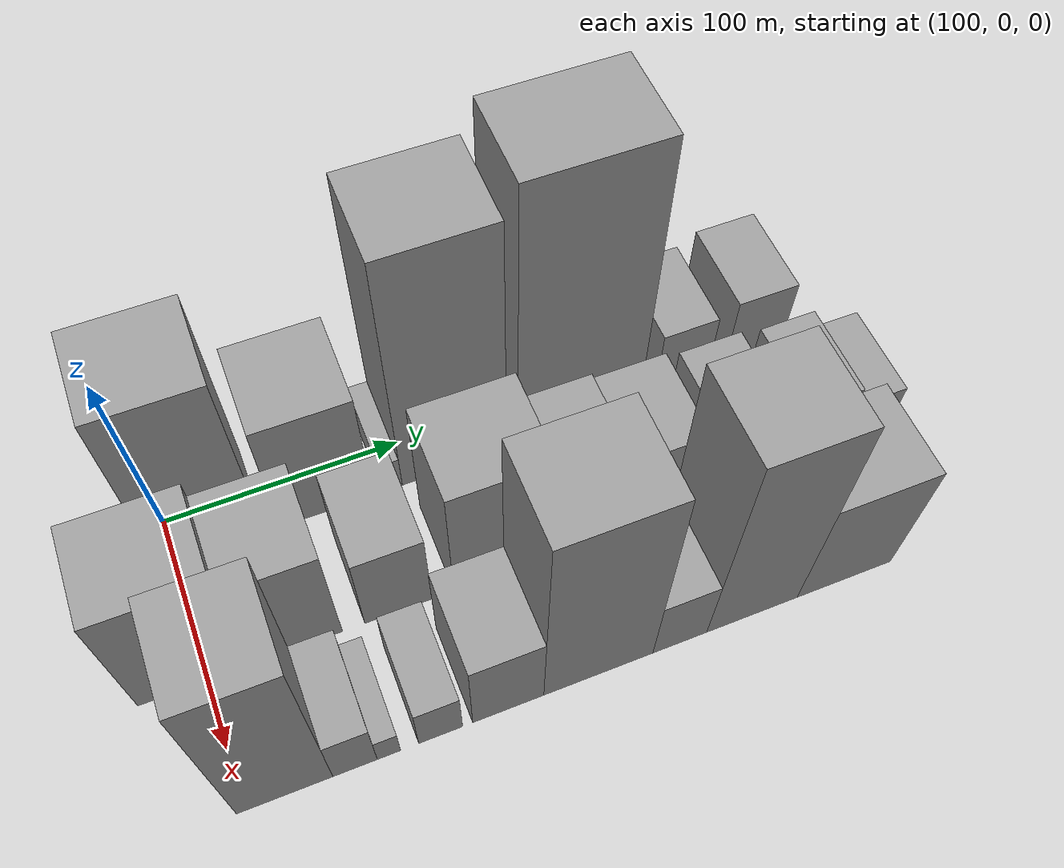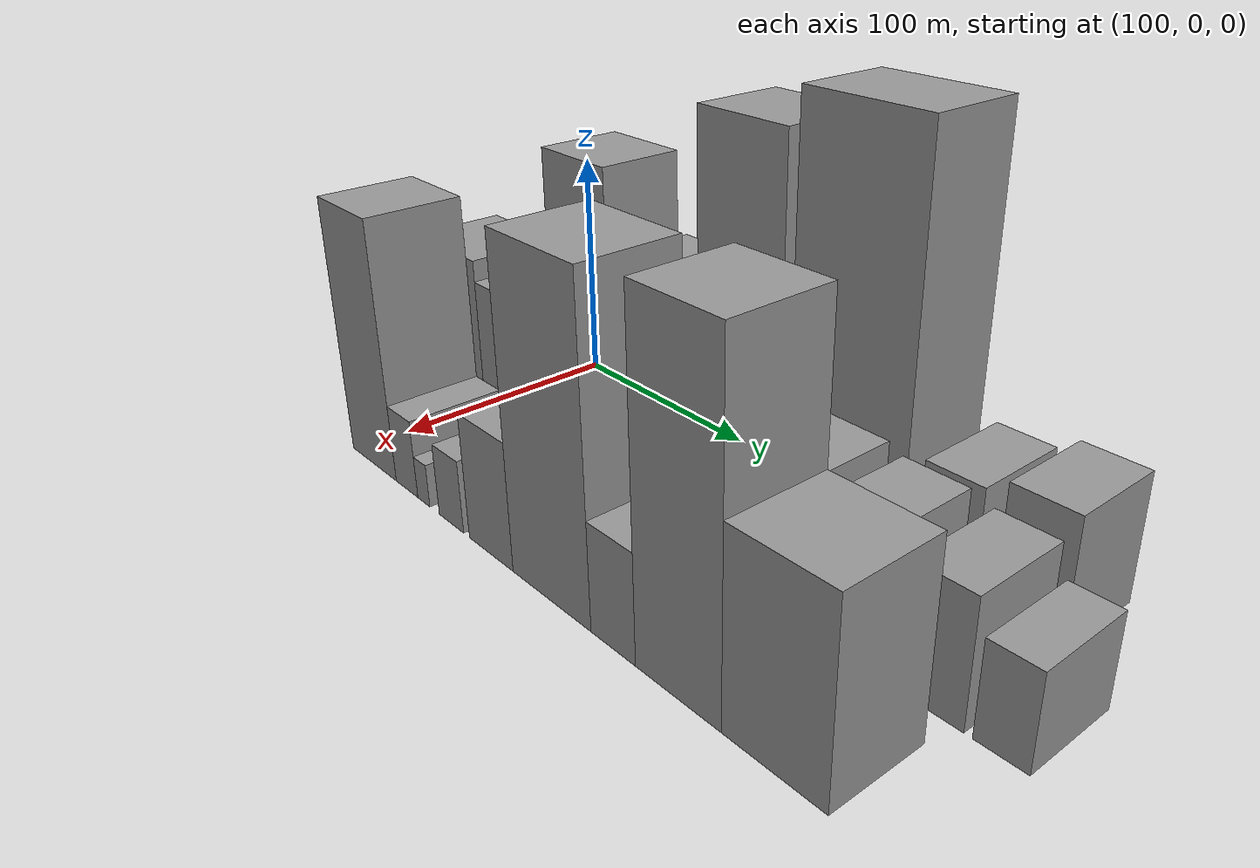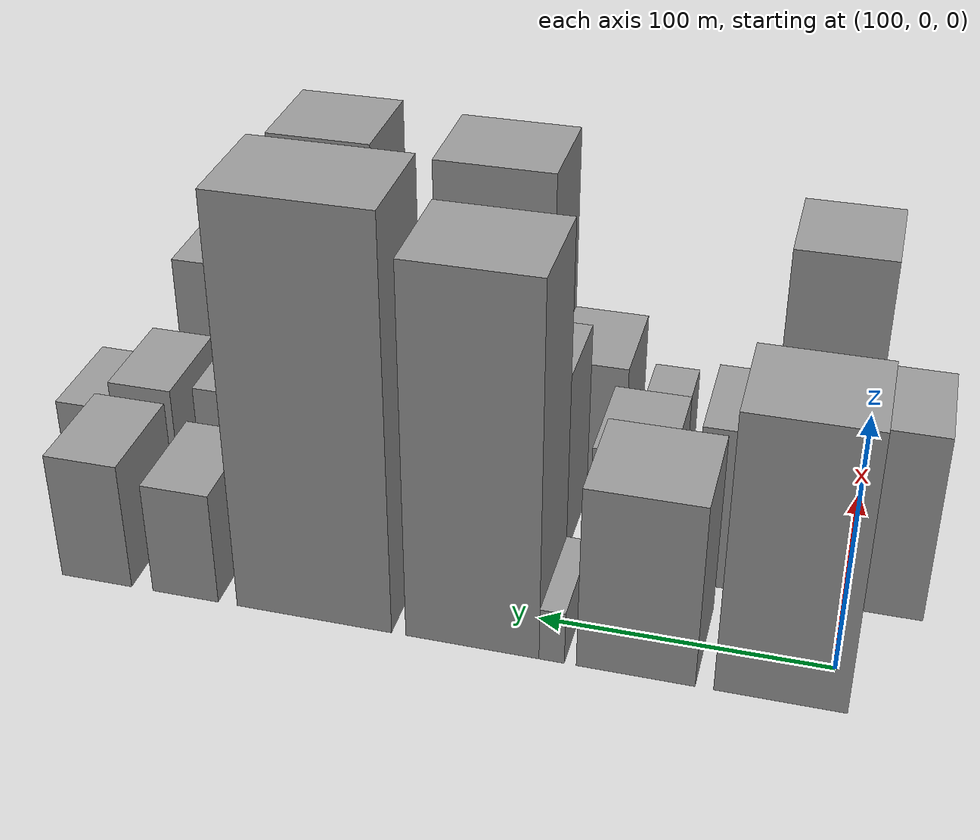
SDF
<sdf version="1.6">
 <world name="default">
  <model name="building_19">
   <static>1</static>
   <pose>100.0000 15.9065 0 0.000000 0.000000 0.000000</pose>
   <link name="link">
    <pose>0 0 54.00 0 0 0</pose>
    <collision name="collision"><geometry><box><size>40.0000 42.9172 108.0000</size></box></geometry></collision>
    <visual name="visual">
     <cast_shadows>0</cast_shadows>
     <geometry><box><size>40.0000 42.9172 108.0000</size></box></geometry>
     <material>
      <script>
       <uri>model://grey_wall/materials/scripts</uri>
       <uri>model://grey_wall/materials/textures</uri>
       <name>vrc/grey_wall</name>
      </script>
     </material>
    </visual>
   </link>
  </model>
  <model name="building_20">
   <static>1</static>
   <pose>100.0000 63.1172 0 0.000000 0.000000 0.000000</pose>
   <link name="link">
    <pose>0 0 36.00 0 0 0</pose>
    <collision name="collision"><geometry><box><size>40.0000 39.5042 72.0000</size></box></geometry></collision>
    <visual name="visual">
     <cast_shadows>0</cast_shadows>
     <geometry><box><size>40.0000 39.5042 72.0000</size></box></geometry>
     <material>
      <script>
       <uri>model://grey_wall/materials/scripts</uri>
       <uri>model://grey_wall/materials/textures</uri>
       <name>vrc/grey_wall</name>
      </script>
     </material>
    </visual>
   </link>
  </model>
  <model name="building_21">
   <static>1</static>
   <pose>100.0000 91.1646 0 0.000000 0.000000 0.000000</pose>
   <link name="link">
    <pose>0 0 10.50 0 0 0</pose>
    <collision name="collision"><geometry><box><size>40.0000 8.5904 21.0000</size></box></geometry></collision>
    <visual name="visual">
     <cast_shadows>0</cast_shadows>
     <geometry><box><size>40.0000 8.5904 21.0000</size></box></geometry>
     <material>
      <script>
       <uri>model://grey_wall/materials/scripts</uri>
       <uri>model://grey_wall/materials/textures</uri>
       <name>vrc/grey_wall</name>
      </script>
     </material>
    </visual>
   </link>
  </model>
  <model name="building_22">
   <static>1</static>
   <pose>100.0000 118.4998 0 0.000000 0.000000 0.000000</pose>
   <link name="link">
    <pose>0 0 72.00 0 0 0</pose>
    <collision name="collision"><geometry><box><size>40.0000 46.0801 144.0000</size></box></geometry></collision>
    <visual name="visual">
     <cast_shadows>0</cast_shadows>
     <geometry><box><size>40.0000 46.0801 144.0000</size></box></geometry>
     <material>
      <script>
       <uri>model://grey_wall/materials/scripts</uri>
       <uri>model://grey_wall/materials/textures</uri>
       <name>vrc/grey_wall</name>
      </script>
     </material>
    </visual>
   </link>
  </model>
  <model name="building_23">
   <static>1</static>
   <pose>100.0000 174.3780 0 0.000000 0.000000 0.000000</pose>
   <link name="link">
    <pose>0 0 79.50 0 0 0</pose>
    <collision name="collision"><geometry><box><size>40.0000 55.6762 159.0000</size></box></geometry></collision>
    <visual name="visual">
     <cast_shadows>0</cast_shadows>
     <geometry><box><size>40.0000 55.6762 159.0000</size></box></geometry>
     <material>
      <script>
       <uri>model://grey_wall/materials/scripts</uri>
       <uri>model://grey_wall/materials/textures</uri>
       <name>vrc/grey_wall</name>
      </script>
     </material>
    </visual>
   </link>
  </model>
  <model name="building_24">
   <static>1</static>
   <pose>100.0000 221.4024 0 0.000000 0.000000 0.000000</pose>
   <link name="link">
    <pose>0 0 22.50 0 0 0</pose>
    <collision name="collision"><geometry><box><size>40.0000 24.3726 45.0000</size></box></geometry></collision>
    <visual name="visual">
     <cast_shadows>0</cast_shadows>
     <geometry><box><size>40.0000 24.3726 45.0000</size></box></geometry>
     <material>
      <script>
       <uri>model://grey_wall/materials/scripts</uri>
       <uri>model://grey_wall/materials/textures</uri>
       <name>vrc/grey_wall</name>
      </script>
     </material>
    </visual>
   </link>
  </model>
  <model name="building_25">
   <static>1</static>
   <pose>100.0000 254.8437 0 0.000000 0.000000 0.000000</pose>
   <link name="link">
    <pose>0 0 25.50 0 0 0</pose>
    <collision name="collision"><geometry><box><size>40.0000 26.5101 51.0000</size></box></geometry></collision>
    <visual name="visual">
     <cast_shadows>0</cast_shadows>
     <geometry><box><size>40.0000 26.5101 51.0000</size></box></geometry>
     <material>
      <script>
       <uri>model://grey_wall/materials/scripts</uri>
       <uri>model://grey_wall/materials/textures</uri>
       <name>vrc/grey_wall</name>
      </script>
     </material>
    </visual>
   </link>
  </model>
  <model name="building_53">
   <static>1</static>
   <pose>152.0000 -4.4842 0 0.000000 0.000000 0.000000</pose>
   <link name="link">
    <pose>0 0 37.50 0 0 0</pose>
    <collision name="collision"><geometry><box><size>40.0000 44.1118 75.0000</size></box></geometry></collision>
    <visual name="visual">
     <cast_shadows>0</cast_shadows>
     <geometry><box><size>40.0000 44.1118 75.0000</size></box></geometry>
     <material>
      <script>
       <uri>model://grey_wall/materials/scripts</uri>
       <uri>model://grey_wall/materials/textures</uri>
       <name>vrc/grey_wall</name>
      </script>
     </material>
    </visual>
   </link>
  </model>
  <model name="building_54">
   <static>1</static>
   <pose>152.0000 35.4075 0 0.000000 0.000000 0.000000</pose>
   <link name="link">
    <pose>0 0 33.00 0 0 0</pose>
    <collision name="collision"><geometry><box><size>40.0000 35.6717 66.0000</size></box></geometry></collision>
    <visual name="visual">
     <cast_shadows>0</cast_shadows>
     <geometry><box><size>40.0000 35.6717 66.0000</size></box></geometry>
     <material>
      <script>
       <uri>model://grey_wall/materials/scripts</uri>
       <uri>model://grey_wall/materials/textures</uri>
       <name>vrc/grey_wall</name>
      </script>
     </material>
    </visual>
   </link>
  </model>
  <model name="building_55">
   <static>1</static>
   <pose>152.0000 76.0595 0 0.000000 0.000000 0.000000</pose>
   <link name="link">
    <pose>0 0 25.50 0 0 0</pose>
    <collision name="collision"><geometry><box><size>40.0000 27.6321 51.0000</size></box></geometry></collision>
    <visual name="visual">
     <cast_shadows>0</cast_shadows>
     <geometry><box><size>40.0000 27.6321 51.0000</size></box></geometry>
     <material>
      <script>
       <uri>model://grey_wall/materials/scripts</uri>
       <uri>model://grey_wall/materials/textures</uri>
       <name>vrc/grey_wall</name>
      </script>
     </material>
    </visual>
   </link>
  </model>
  <model name="building_56">
   <static>1</static>
   <pose>152.0000 119.8671 0 0.000000 0.000000 0.000000</pose>
   <link name="link">
    <pose>0 0 37.50 0 0 0</pose>
    <collision name="collision"><geometry><box><size>40.0000 41.9832 75.0000</size></box></geometry></collision>
    <visual name="visual">
     <cast_shadows>0</cast_shadows>
     <geometry><box><size>40.0000 41.9832 75.0000</size></box></geometry>
     <material>
      <script>
       <uri>model://grey_wall/materials/scripts</uri>
       <uri>model://grey_wall/materials/textures</uri>
       <name>vrc/grey_wall</name>
      </script>
     </material>
    </visual>
   </link>
  </model>
  <model name="building_57">
   <static>1</static>
   <pose>152.0000 156.3310 0 0.000000 0.000000 0.000000</pose>
   <link name="link">
    <pose>0 0 28.50 0 0 0</pose>
    <collision name="collision"><geometry><box><size>40.0000 30.9444 57.0000</size></box></geometry></collision>
    <visual name="visual">
     <cast_shadows>0</cast_shadows>
     <geometry><box><size>40.0000 30.9444 57.0000</size></box></geometry>
     <material>
      <script>
       <uri>model://grey_wall/materials/scripts</uri>
       <uri>model://grey_wall/materials/textures</uri>
       <name>vrc/grey_wall</name>
      </script>
     </material>
    </visual>
   </link>
  </model>
  <model name="building_58">
   <static>1</static>
   <pose>152.0000 187.4528 0 0.000000 0.000000 0.000000</pose>
   <link name="link">
    <pose>0 0 27.00 0 0 0</pose>
    <collision name="collision"><geometry><box><size>40.0000 31.2992 54.0000</size></box></geometry></collision>
    <visual name="visual">
     <cast_shadows>0</cast_shadows>
     <geometry><box><size>40.0000 31.2992 54.0000</size></box></geometry>
     <material>
      <script>
       <uri>model://grey_wall/materials/scripts</uri>
       <uri>model://grey_wall/materials/textures</uri>
       <name>vrc/grey_wall</name>
      </script>
     </material>
    </visual>
   </link>
  </model>
  <model name="building_59">
   <static>1</static>
   <pose>152.0000 222.5751 0 0.000000 0.000000 0.000000</pose>
   <link name="link">
    <pose>0 0 25.50 0 0 0</pose>
    <collision name="collision"><geometry><box><size>40.0000 26.9455 51.0000</size></box></geometry></collision>
    <visual name="visual">
     <cast_shadows>0</cast_shadows>
     <geometry><box><size>40.0000 26.9455 51.0000</size></box></geometry>
     <material>
      <script>
       <uri>model://grey_wall/materials/scripts</uri>
       <uri>model://grey_wall/materials/textures</uri>
       <name>vrc/grey_wall</name>
      </script>
     </material>
    </visual>
   </link>
  </model>
  <model name="building_60">
   <static>1</static>
   <pose>152.0000 257.1411 0 0.000000 0.000000 0.000000</pose>
   <link name="link">
    <pose>0 0 24.00 0 0 0</pose>
    <collision name="collision"><geometry><box><size>40.0000 24.1863 48.0000</size></box></geometry></collision>
    <visual name="visual">
     <cast_shadows>0</cast_shadows>
     <geometry><box><size>40.0000 24.1863 48.0000</size></box></geometry>
     <material>
      <script>
       <uri>model://grey_wall/materials/scripts</uri>
       <uri>model://grey_wall/materials/textures</uri>
       <name>vrc/grey_wall</name>
      </script>
     </material>
    </visual>
   </link>
  </model>
  <model name="building_61">
   <static>1</static>
   <pose>152.0000 281.9680 0 0.000000 0.000000 0.000000</pose>
   <link name="link">
    <pose>0 0 18.00 0 0 0</pose>
    <collision name="collision"><geometry><box><size>40.0000 19.4674 36.0000</size></box></geometry></collision>
    <visual name="visual">
     <cast_shadows>0</cast_shadows>
     <geometry><box><size>40.0000 19.4674 36.0000</size></box></geometry>
     <material>
      <script>
       <uri>model://grey_wall/materials/scripts</uri>
       <uri>model://grey_wall/materials/textures</uri>
       <name>vrc/grey_wall</name>
      </script>
     </material>
    </visual>
   </link>
  </model>
  <model name="building_85">
   <static>1</static>
   <pose>204.0000 15.2352 0 0.000000 0.000000 0.000000</pose>
   <link name="link">
    <pose>0 0 54.00 0 0 0</pose>
    <collision name="collision"><geometry><box><size>40.0000 35.9328 108.0000</size></box></geometry></collision>
    <visual name="visual">
     <cast_shadows>0</cast_shadows>
     <geometry><box><size>40.0000 35.9328 108.0000</size></box></geometry>
     <material>
      <script>
       <uri>model://grey_wall/materials/scripts</uri>
       <uri>model://grey_wall/materials/textures</uri>
       <name>vrc/grey_wall</name>
      </script>
     </material>
    </visual>
   </link>
  </model>
  <model name="building_86">
   <static>1</static>
   <pose>204.0000 41.6203 0 0.000000 0.000000 0.000000</pose>
   <link name="link">
    <pose>0 0 16.50 0 0 0</pose>
    <collision name="collision"><geometry><box><size>40.0000 16.8372 33.0000</size></box></geometry></collision>
    <visual name="visual">
     <cast_shadows>0</cast_shadows>
     <geometry><box><size>40.0000 16.8372 33.0000</size></box></geometry>
     <material>
      <script>
       <uri>model://grey_wall/materials/scripts</uri>
       <uri>model://grey_wall/materials/textures</uri>
       <name>vrc/grey_wall</name>
      </script>
     </material>
    </visual>
   </link>
  </model>
  <model name="building_87">
   <static>1</static>
   <pose>204.0000 54.5278 0 0.000000 0.000000 0.000000</pose>
   <link name="link">
    <pose>0 0 9.00 0 0 0</pose>
    <collision name="collision"><geometry><box><size>40.0000 8.9780 18.0000</size></box></geometry></collision>
    <visual name="visual">
     <cast_shadows>0</cast_shadows>
     <geometry><box><size>40.0000 8.9780 18.0000</size></box></geometry>
     <material>
      <script>
       <uri>model://grey_wall/materials/scripts</uri>
       <uri>model://grey_wall/materials/textures</uri>
       <name>vrc/grey_wall</name>
      </script>
     </material>
    </visual>
   </link>
  </model>
  <model name="building_88">
   <static>1</static>
   <pose>204.0000 74.6007 0 0.000000 0.000000 0.000000</pose>
   <link name="link">
    <pose>0 0 15.00 0 0 0</pose>
    <collision name="collision"><geometry><box><size>40.0000 17.1677 30.0000</size></box></geometry></collision>
    <visual name="visual">
     <cast_shadows>0</cast_shadows>
     <geometry><box><size>40.0000 17.1677 30.0000</size></box></geometry>
     <material>
      <script>
       <uri>model://grey_wall/materials/scripts</uri>
       <uri>model://grey_wall/materials/textures</uri>
       <name>vrc/grey_wall</name>
      </script>
     </material>
    </visual>
   </link>
  </model>
  <model name="building_89">
   <static>1</static>
   <pose>204.0000 101.3782 0 0.000000 0.000000 0.000000</pose>
   <link name="link">
    <pose>0 0 25.50 0 0 0</pose>
    <collision name="collision"><geometry><box><size>40.0000 28.3873 51.0000</size></box></geometry></collision>
    <visual name="visual">
     <cast_shadows>0</cast_shadows>
     <geometry><box><size>40.0000 28.3873 51.0000</size></box></geometry>
     <material>
      <script>
       <uri>model://grey_wall/materials/scripts</uri>
       <uri>model://grey_wall/materials/textures</uri>
       <name>vrc/grey_wall</name>
      </script>
     </material>
    </visual>
   </link>
  </model>
  <model name="building_90">
   <static>1</static>
   <pose>204.0000 138.0467 0 0.000000 0.000000 0.000000</pose>
   <link name="link">
    <pose>0 0 63.00 0 0 0</pose>
    <collision name="collision"><geometry><box><size>40.0000 44.9497 126.0000</size></box></geometry></collision>
    <visual name="visual">
     <cast_shadows>0</cast_shadows>
     <geometry><box><size>40.0000 44.9497 126.0000</size></box></geometry>
     <material>
      <script>
       <uri>model://grey_wall/materials/scripts</uri>
       <uri>model://grey_wall/materials/textures</uri>
       <name>vrc/grey_wall</name>
      </script>
     </material>
    </visual>
   </link>
  </model>
  <model name="building_91">
   <static>1</static>
   <pose>204.0000 171.9271 0 0.000000 0.000000 0.000000</pose>
   <link name="link">
    <pose>0 0 21.00 0 0 0</pose>
    <collision name="collision"><geometry><box><size>40.0000 22.8110 42.0000</size></box></geometry></collision>
    <visual name="visual">
     <cast_shadows>0</cast_shadows>
     <geometry><box><size>40.0000 22.8110 42.0000</size></box></geometry>
     <material>
      <script>
       <uri>model://grey_wall/materials/scripts</uri>
       <uri>model://grey_wall/materials/textures</uri>
       <name>vrc/grey_wall</name>
      </script>
     </material>
    </visual>
   </link>
  </model>
  <model name="building_92">
   <static>1</static>
   <pose>204.0000 202.9652 0 0.000000 0.000000 0.000000</pose>
   <link name="link">
    <pose>0 0 64.50 0 0 0</pose>
    <collision name="collision"><geometry><box><size>40.0000 39.2653 129.0000</size></box></geometry></collision>
    <visual name="visual">
     <cast_shadows>0</cast_shadows>
     <geometry><box><size>40.0000 39.2653 129.0000</size></box></geometry>
     <material>
      <script>
       <uri>model://grey_wall/materials/scripts</uri>
       <uri>model://grey_wall/materials/textures</uri>
       <name>vrc/grey_wall</name>
      </script>
     </material>
    </visual>
   </link>
  </model>
  <model name="building_93">
   <static>1</static>
   <pose>204.0000 243.5092 0 0.000000 0.000000 0.000000</pose>
   <link name="link">
    <pose>0 0 36.00 0 0 0</pose>
    <collision name="collision"><geometry><box><size>40.0000 41.8228 72.0000</size></box></geometry></collision>
    <visual name="visual">
     <cast_shadows>0</cast_shadows>
     <geometry><box><size>40.0000 41.8228 72.0000</size></box></geometry>
     <material>
      <script>
       <uri>model://grey_wall/materials/scripts</uri>
       <uri>model://grey_wall/materials/textures</uri>
       <name>vrc/grey_wall</name>
      </script>
     </material>
    </visual>
   </link>
  </model>
 </world>
</sdf>
